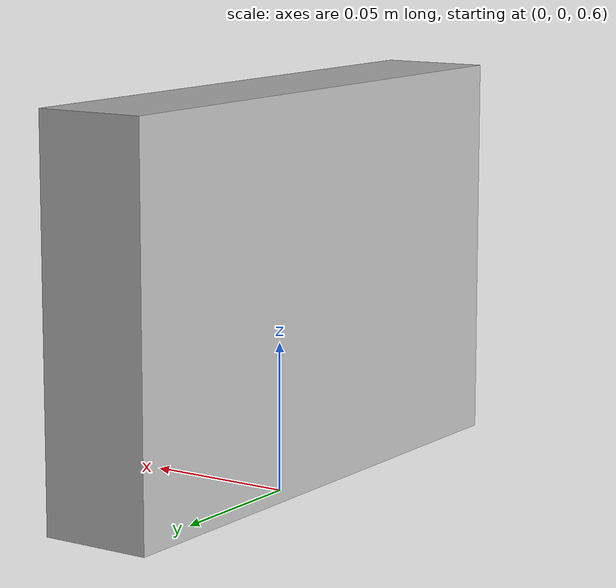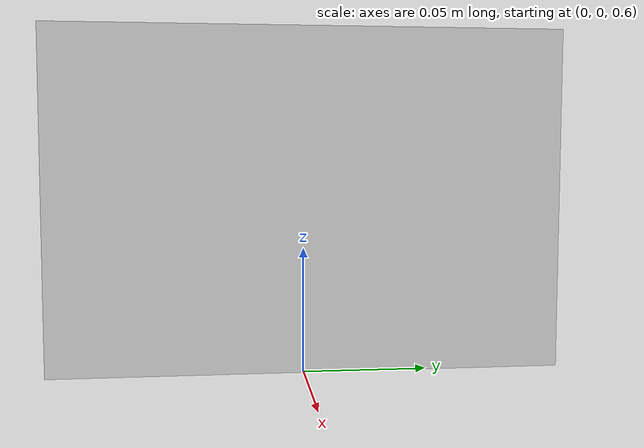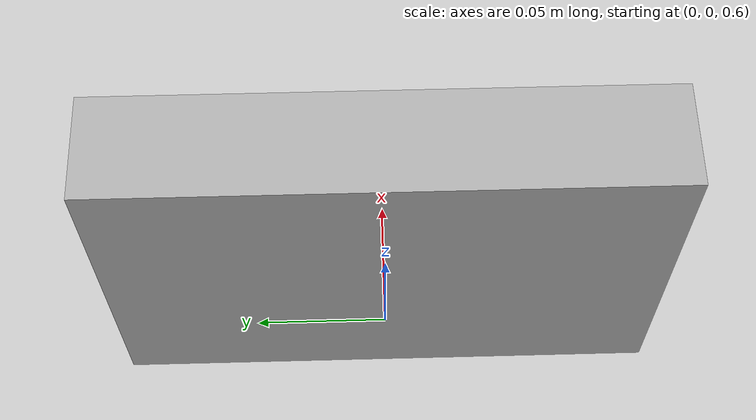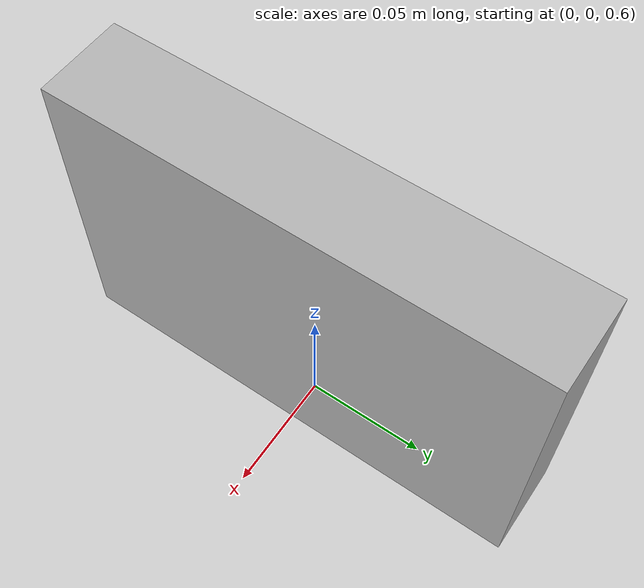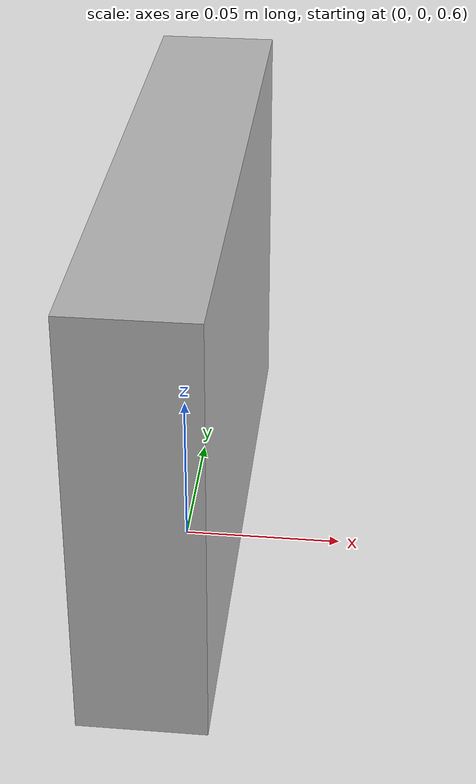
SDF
<sdf version="1.3">
<model name="baguette">
  <pose>0 0 0.67 -1.57 0.0 1.57</pose>
  <static>false</static>
    <link name="link">
      <inertial>
        <mass>1.0</mass>
        <inertia>
          <ixx>1.0</ixx>
          <ixy>0.0</ixy>
          <ixz>0.0</ixz>
          <iyy>1.0</iyy>
          <iyz>0.0</iyz>
          <izz>1.0</izz>
        </inertia>
      </inertial>
      <collision name="collision">
        <geometry>
          <box>
            <size>0.195 0.13 0.037</size>
          </box>
        </geometry>
      </collision>
      <visual name="visual">
        <geometry>
          <box>
            <size>0.195 0.13 0.037</size>
          </box>
        </geometry>
	<material>
          <script>
            <uri>model://baguette/materials/scripts</uri>
            <uri>model://baguette/materials/textures</uri>
            <name>Baguette/Diffuse</name>
          </script>
        </material>

      </visual>
    </link>
  </model>
</sdf>
